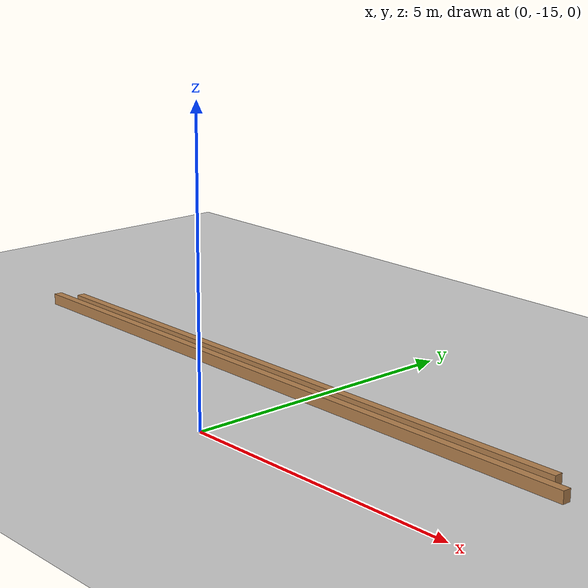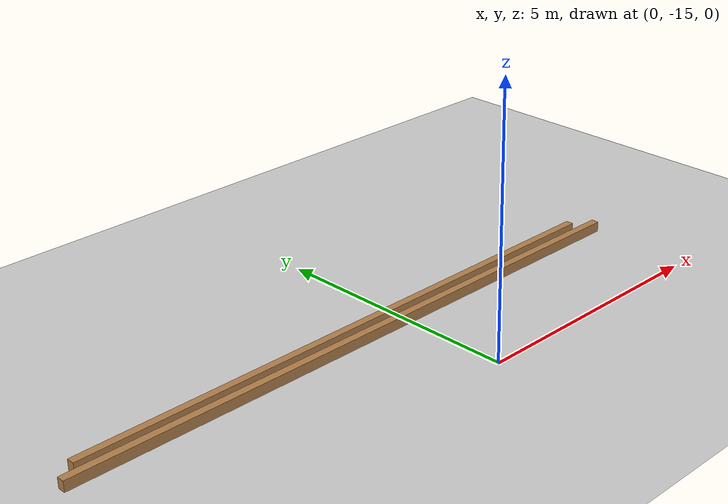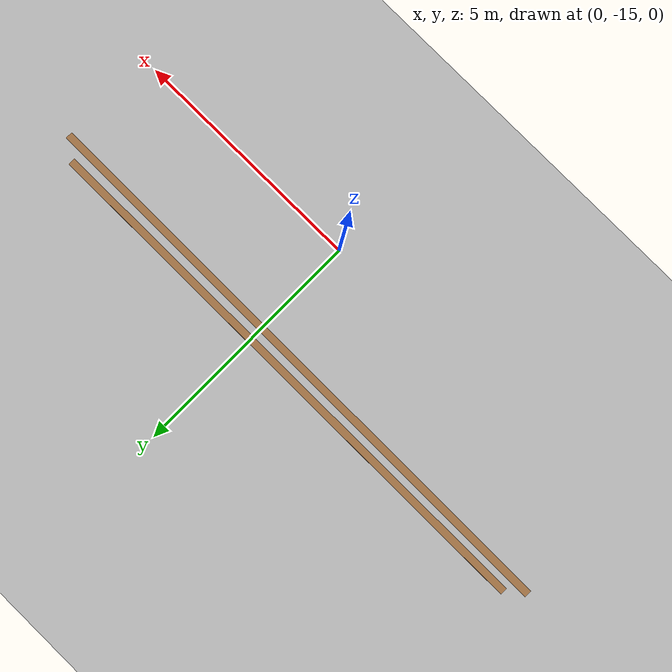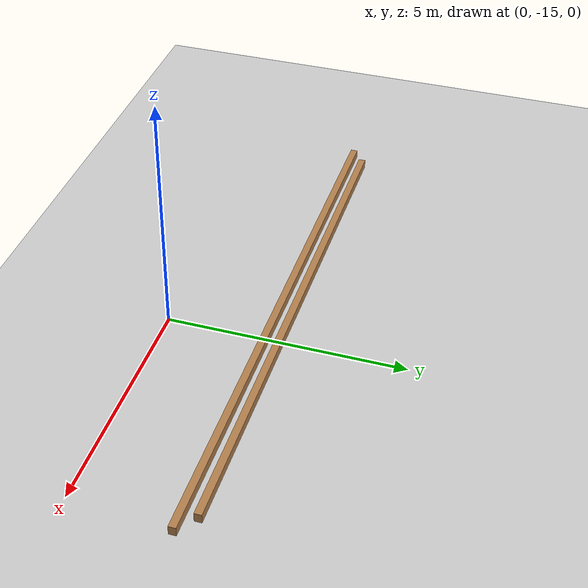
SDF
<sdf version="1.6">
 <world name="default">
  <model name="ground_plane">
   <static>1</static>
   <link name="link">
    <collision name="collision">
     <geometry><plane><normal>0 0 1</normal><size>100 100</size></plane></geometry>
     <surface>
      <contact><collide_bitmask>65535</collide_bitmask></contact>
      <friction><ode><mu>100</mu><mu2>50</mu2></ode></friction>
     </surface>
    </collision>
    <visual name="visual">
     <cast_shadows>0</cast_shadows>
     <geometry><plane><normal>0 0 1</normal><size>100 100</size></plane></geometry>
     <material>
      <script><uri>file://media/materials/scripts/gazebo.material</uri><name>Gazebo/Grey</name></script>
     </material>
    </visual>
   </link>
  </model>
  <model name="BuildMyWorld">
   <pose>-3.99019 0.7838 0 0 -0 0</pose>
   <link name="Wall_100">
    <collision name="Wall_100_Collision">
     <geometry><box><size>12.25 0.15 0.2</size></box></geometry>
     <pose>0 0 0.1 0 -0 0</pose>
    </collision>
    <visual name="Wall_100_Visual">
     <pose>0 0 0.1 0 -0 0</pose>
     <geometry><box><size>12.25 0.15 0.2</size></box></geometry>
     <material>
      <script><uri>file://media/materials/scripts/gazebo.material</uri><name>Gazebo/Wood</name></script>
      <ambient>1 1 1 1</ambient>
     </material>
     <meta><layer>0</layer></meta>
    </visual>
    <pose>3.08619 -13.6873 0 0 0 -0.002893</pose>
   </link>
   <link name="Wall_51">
    <collision name="Wall_51_Collision">
     <geometry><box><size>11.5 0.15 0.2</size></box></geometry>
     <pose>0 0 0.1 0 -0 0</pose>
    </collision>
    <visual name="Wall_51_Visual">
     <pose>0 0 0.1 0 -0 0</pose>
     <geometry><box><size>11.5 0.15 0.2</size></box></geometry>
     <material>
      <script><uri>file://media/materials/scripts/gazebo.material</uri><name>Gazebo/Wood</name></script>
      <ambient>1 1 1 1</ambient>
     </material>
     <meta><layer>0</layer></meta>
    </visual>
    <pose>3.06419 -13.3858 0 0 -0 0</pose>
   </link>
   <static>1</static>
  </model>
 </world>
</sdf>
